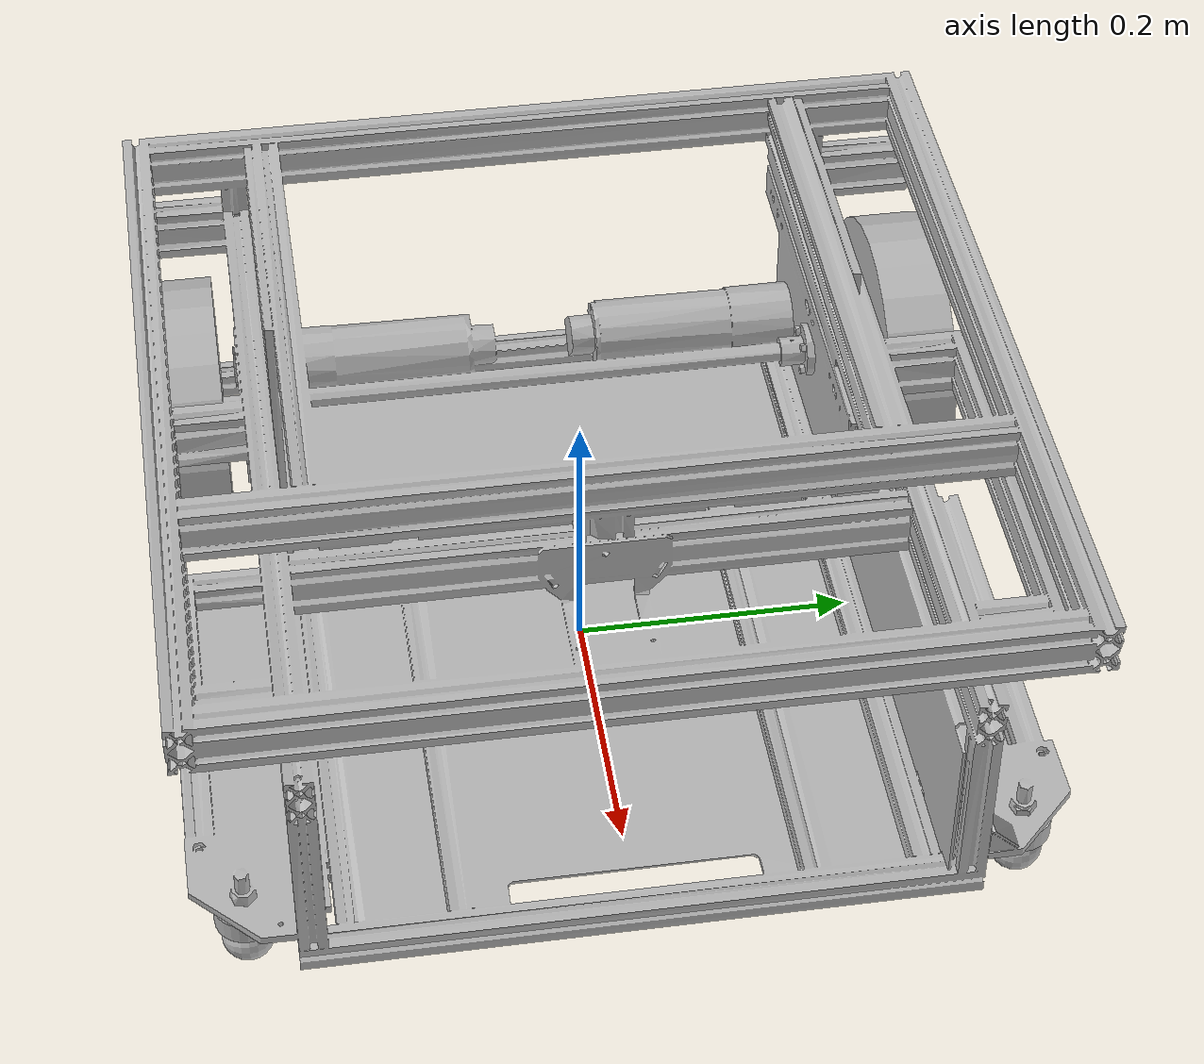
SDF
<?xml version='1.0' ?>

<sdf version='1.4'>
    <model name="No_name">

        <!-- MODEL -->

        <link name="chassis">
            <pose>0 0 0.0175 0 0 0</pose>
            <inertial>
                <pose>0 0.006896 0.111428 0 0 0</pose>
                <mass>14.5</mass>
                <inertia>
                    <ixx>0.664203113</ixx>
                    <iyy>0.604736499</iyy>
                    <izz>1.075415484</izz>
                </inertia>
            </inertial>
            <collision name="collision">
                <geometry>
                    <mesh>
                        <uri>file://{PATH_TO_MODELS}/models/noname/meshes/chassis.stl</uri>
                    </mesh>
                </geometry>
            </collision>
            <visual name="visual">
                <geometry>
                    <mesh>
                        <uri>file://{PATH_TO_MODELS}/models/noname/meshes/chassis.stl</uri>
                    </mesh>
                </geometry>
            </visual>

            <collision name="left_plate_collision">
            <pose>0.263 0.263 0.0265 0 0 0</pose>
                <geometry>
                    <cylinder>
                        <radius>.0215</radius>
                        <length>.016</length>
                    </cylinder>
                </geometry>
            </collision>
            <visual name="left_plate_visual">
            <pose>0.263 0.263 0.0265 0 0 0</pose>
                <geometry>
                    <cylinder>
                        <radius>.0215</radius>
                        <length>.016</length>
                    </cylinder>
                </geometry>
            </visual>

            <collision name="right_plate_collision">
            <pose>0.263 -0.263 0.0265 0 0 0</pose>
                <geometry>
                    <cylinder>
                        <radius>.0215</radius>
                        <length>.016</length>
                    </cylinder>
                </geometry>
            </collision>
            <visual name="right_plate_visual">
            <pose>0.263 -0.263 0.0265 0 0 0</pose>
                <geometry>
                    <cylinder>
                        <radius>.0215</radius>
                        <length>.016</length>
                    </cylinder>
                </geometry>
            </visual>

            <collision name="right_sphere_collision">
                <pose>0.262 -0.263 0.0005 1.5707 0 0</pose>
                <geometry>
                    <sphere>
                        <radius>.018</radius>
                    </sphere>
                </geometry>
                <surface>
                    <friction>
                        <ode>
                            <mu>0</mu>
                            <mu2>0</mu2>
                        </ode>
                    </friction>
                </surface>
            </collision>
            <visual name="right_sphere_visual">
                <pose>0.262 -0.263 0.0005 1.5707 0 0</pose>
                <geometry>
                    <sphere>
                        <radius>.018</radius>
                    </sphere>
                </geometry>
            </visual>

            <collision name="left_sphere_collision">
                <pose>0.262 0.263 0.0005 1.5707 0 0</pose>
                <geometry>
                    <sphere>
                        <radius>.018</radius>
                    </sphere>
                </geometry>
                <surface>
                    <friction>
                        <ode>
                            <mu>0</mu>
                            <mu2>0</mu2>
                        </ode>
                    </friction>
                </surface>
            </collision>
            <visual name="left_sphere_visual">
                <pose>0.262 0.263 0.0005 1.5707 0 0</pose>
                <geometry>
                    <sphere>
                        <radius>.018</radius>
                    </sphere>
                </geometry>
            </visual>

        </link>

        <link name="right_back_wheel">
            <inertial>
                <mass>1.8</mass>
            </inertial>
            <pose>-0.175 -0.27 0.1 1.5707 0 0</pose>
            <collision name="collision">
                <geometry>
                    <cylinder>
                        <radius>.1</radius>
                        <length>.05</length>
                    </cylinder>
                </geometry>
                <surface>
                    <friction>
                        <ode>
                            <mu>1000000</mu>
                            <mu2>1000000</mu2>
                        </ode>
                    </friction>
                </surface>
            </collision>
            <visual name="visual">
                <geometry>
                    <cylinder>
                        <radius>.1</radius>
                        <length>.05</length>
                    </cylinder>
                </geometry>
            </visual>
        </link>

        <link name="left_back_wheel">
            <inertial>
                <mass>1.8</mass>
            </inertial>
            <pose>-0.175 0.27 0.1 1.5707 0 0</pose>
            <collision name="collision">
                <geometry>
                    <cylinder>
                        <radius>.1</radius>
                        <length>.05</length>
                    </cylinder>
                </geometry>
                <surface>
                    <friction>
                        <ode>
                            <mu>1000000</mu>
                            <mu2>1000000</mu2>
                        </ode>
                    </friction>
                </surface>
            </collision>
            <visual name="visual">
                <geometry>
                    <cylinder>
                        <radius>.1</radius>
                        <length>.05</length>
                    </cylinder>
                </geometry>
            </visual>
        </link>

        <!-- JOINTS -->

        <joint type="revolute" name="right_back_wheel_hinge">
            <child>right_back_wheel</child>
            <parent>chassis</parent>
            <axis>
                <xyz>0 1 0</xyz>
            </axis>
        </joint>

        <joint type="revolute" name="left_back_wheel_hinge">
            <child>left_back_wheel</child>
            <parent>chassis</parent>
            <axis>
                <xyz>0 1 0</xyz>
            </axis>
        </joint>

        <!-- PLUGINS -->

        <plugin name="differential_drive_controller" filename="libgazebo_ros_diff_drive.so">
            <legacyMode>false</legacyMode>
            <alwaysOn>true</alwaysOn>
            <updateRate>20</updateRate>
            <leftJoint>left_back_wheel_hinge</leftJoint>
            <rightJoint>right_back_wheel_hinge</rightJoint>
            <wheelSeparation>0.54</wheelSeparation>
            <wheelDiameter>0.2</wheelDiameter>
            <wheelTorque>20</wheelTorque>
            <commandTopic>/cmd_vel</commandTopic>
            <odometryTopic>odom</odometryTopic>
            <odometryFrame>odom</odometryFrame>
            <publishTf>1</publishTf>
            <publishWheelJointState>true</publishWheelJointState>
            <robotBaseFrame>base_footprint</robotBaseFrame>
        </plugin>

        <plugin name="gazebo_speed_sensor_plugin" filename="libgazebo_speed_sensor_plugin.so"/>

    </model>
</sdf>
